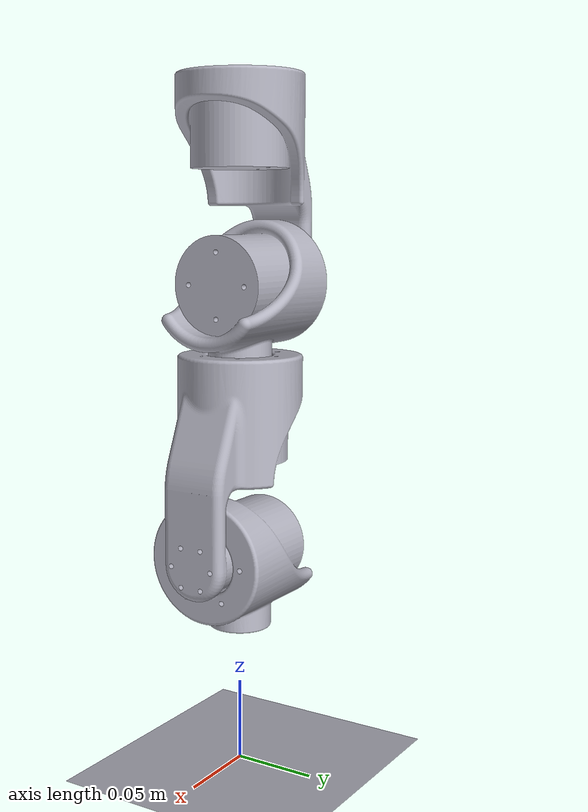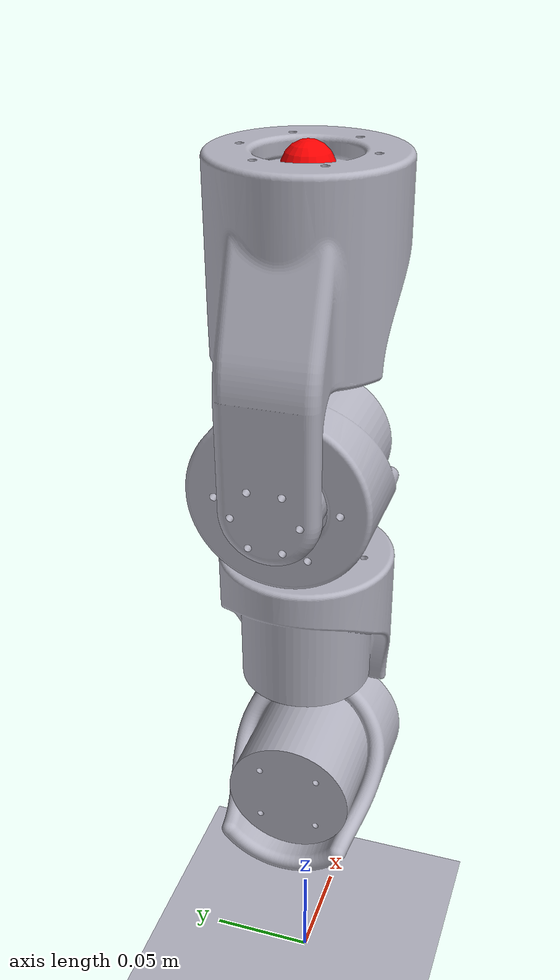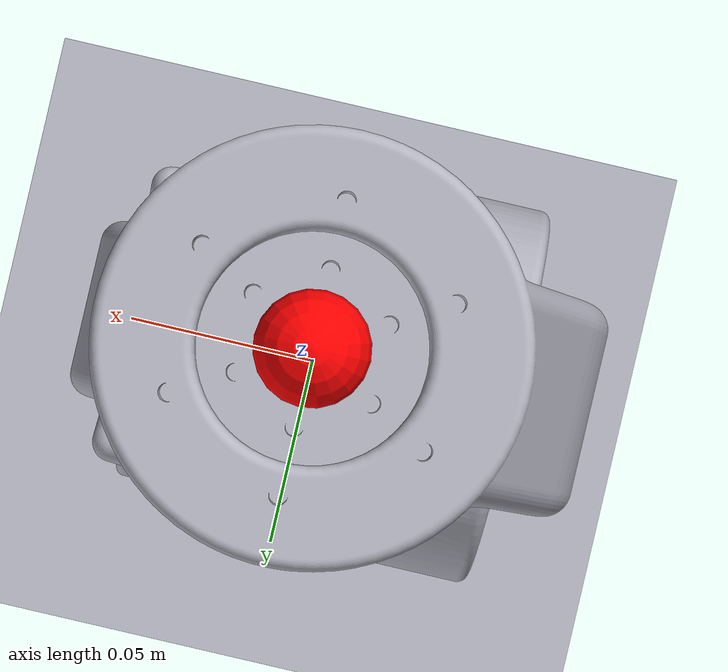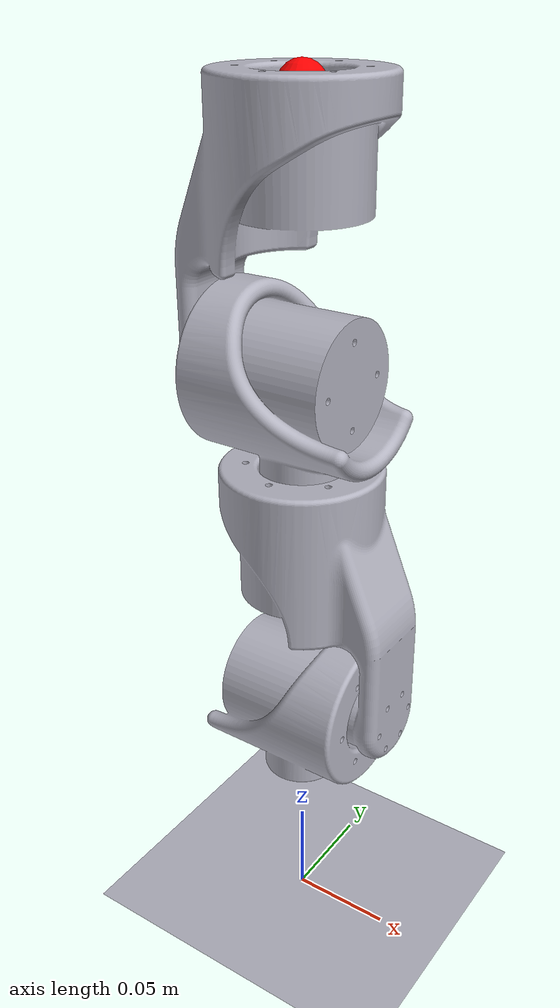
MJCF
<mujoco model="4DOF_RoboticArm_CAD_Updated">
    <compiler angle="radian" coordinate="local" meshdir="./"/>

    <option timestep="0.001" gravity="0 0 -9.81"/>

    <default>
        <joint damping="0.1"/>
        <geom type="cylinder" rgba="0.7 0.7 0.75 1"/>
    </default>

    <asset>
        <material name="robot_metal" rgba="0.7 0.7 0.75 1" specular="0.8" shininess="0.9"/>
        <material name="joint_dark" rgba="0.3 0.3 0.3 1" specular="0.9" shininess="0.9"/>
        <texture name="grid" type="2d" builtin="checker" width="512" height="512"
                 rgb1="0.2 0.2 0.2" rgb2="0.3 0.3 0.3"/>
        <material name="grid" texture="grid" texrepeat="8 8" reflectance="0.1"/>

        <!-- Mesh definitions -->
        <mesh name="link2_visual" file="Link2.stl" scale="0.001 0.001 0.001"/>
        <mesh name="link3_visual" file="Link3.stl" scale="0.001 0.001 0.001"/>
        <mesh name="link4_visual" file="Link4.stl" scale="0.001 0.001 0.001"/>
        <mesh name="link5_visual" file="Link5.stl" scale="0.001 0.001 0.001"/>
    </asset>

    <worldbody>
        <geom name="ground" type="plane" size="2 2 0.01" material="grid" pos="0 0 0"/>
        <light directional="true" pos="0 0 3" dir="0 0 -1" diffuse="0.8 0.8 0.8"/>
        <light directional="true" pos="1 1 2" dir="-0.5 -0.5 -1" diffuse="0.4 0.4 0.4"/>

        <!-- Link 2 - Joint1_CS -->
        <body name="link2" pos="0 0 0.08705">
            <joint name="joint_1" type="hinge" pos="0 0 0" axis="0 0 1"
                  />

            <!-- Visual mesh (no collision) -->
            <geom type="mesh" mesh="link2_visual"
                  contype="0" conaffinity="0" material="robot_metal"/>

            <!-- Collision cylinder (invisible) -->
            <geom type="cylinder" size="0.03 0.02362"
                  pos="0.00117 0 0.04602"
                  contype="1" conaffinity="1" rgba="0 0 0 0"/>

            <!-- Inertial - Joint1_CS -->
            <inertial pos="0.00117 0 0.04602" mass="0.41629"
                      fullinertia="1.96459e-4 2.21717e-4 2.14067e-4 -3.1e-10 4.28779e-6 -4.3e-10"/>

            <!-- Link 3 - Joint2_CS -->
            <body name="link3" pos="0.02875 0 0.04725">
                <joint name="joint_2" type="hinge" pos="0 0 0" axis="1 0 0"
                       />

                <geom type="mesh" mesh="link3_visual"
                      contype="0" conaffinity="0" material="robot_metal"/>

                <geom type="cylinder" size="0.028 0.056375"
                      pos="-0.02576 0 0.08185"
                      contype="1" conaffinity="1" rgba="0 0 0 0"/>

                <!-- Inertial - Joint2_CS -->
                <inertial pos="-0.02576 0 0.08185" mass="0.43184"
                          fullinertia="2.94318e-4 3.28155e-4 2.25828e-4 9.0e-10 -5.29790e-5 3.1e-10"/>

                <!-- Link 4 - Joint3_CS -->
                <body name="link4" pos="-0.02875 0 0.11275">
                    <joint name="joint_3" type="hinge" pos="0 0 0" axis="0 0 1"
                           />

                    <geom type="mesh" mesh="link4_visual"
                          contype="0" conaffinity="0" material="joint_dark"/>

                    <geom type="cylinder" size="0.025 0.0236125"
                          pos="-0.00220 0 0.04598"
                          contype="1" conaffinity="1" rgba="0 0 0 0"/>

                    <!-- Inertial - Joint3_CS -->
                    <inertial pos="-0.00220 0 0.04598" mass="0.40330"
                              fullinertia="1.92038e-4 2.06312e-4 1.98682e-4 -2.4e-10 -4.81560e-6 4.3e-10"/>

                    <!-- Link 5 - Joint4_CS -->
                    <body name="link5" pos="-0.02805 0 0.04725">
                        <joint name="joint_4" type="hinge" pos="0 0 0" axis="1 0 0"
                               />

                        <geom type="mesh" mesh="link5_visual"
                              contype="0" conaffinity="0" material="robot_metal"/>

                        <geom type="cylinder" size="0.022 0.056"
                              pos="0.02442 0 0.08532"
                              contype="1" conaffinity="1" rgba="0 0 0 0"/>

                        <!-- Inertial - Joint4_CS -->
                        <inertial pos="0.02442 0 0.08532" mass="0.35714"
                                  fullinertia="2.44985e-4 2.78152e-4 1.95643e-4 9.0e-10 5.80776e-5 -3.0e-10"/>

                        <!-- End Effector Site on Link 5 -->
                        <site name="end_effector" pos="0.02805 0 0.112"
                              size="0.01" rgba="1 0 0 1"/>
                    </body>
                </body>
            </body>
        </body>
    </worldbody>

    <actuator>
        <motor name="joint_1_motor" joint="joint_1"/>
        <motor name="joint_2_motor" joint="joint_2"/>
        <motor name="joint_3_motor" joint="joint_3"/>
        <motor name="joint_4_motor" joint="joint_4"/>
    </actuator>

    <sensor>
        <jointpos name="joint_1_pos" joint="joint_1"/>
        <jointpos name="joint_2_pos" joint="joint_2"/>
        <jointpos name="joint_3_pos" joint="joint_3"/>
        <jointpos name="joint_4_pos" joint="joint_4"/>

        <jointvel name="joint_1_vel" joint="joint_1"/>
        <jointvel name="joint_2_vel" joint="joint_2"/>
        <jointvel name="joint_3_vel" joint="joint_3"/>
        <jointvel name="joint_4_vel" joint="joint_4"/>

        <framepos name="ee_pos" objtype="site" objname="end_effector"/>
    </sensor>

</mujoco>
